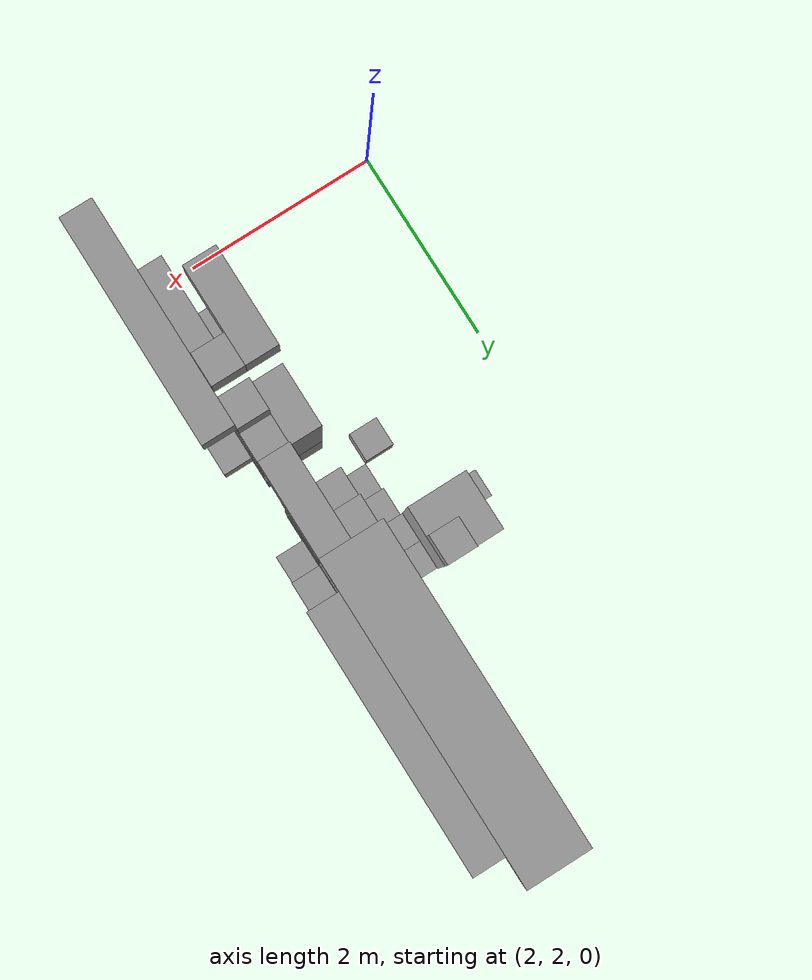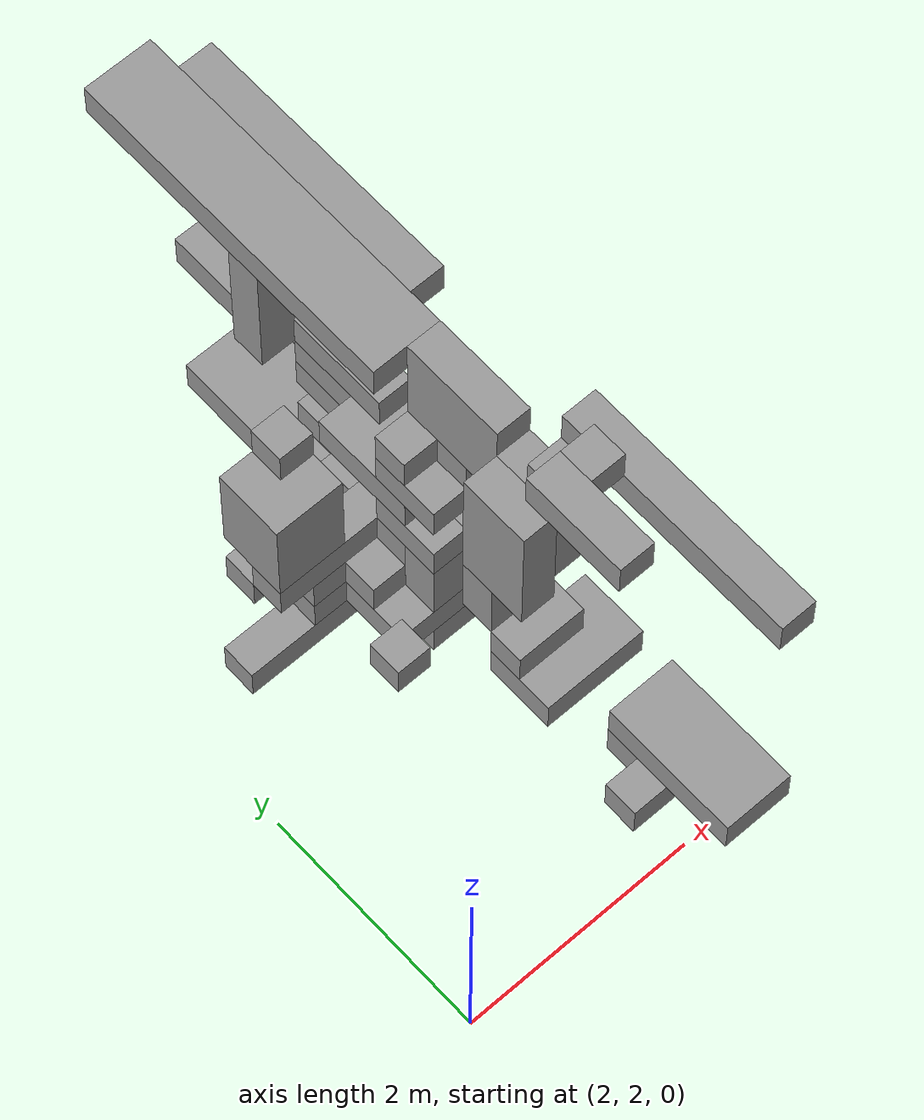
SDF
<sdf version="1.6">
 <world name="bt_world">
  <include><uri>model://sun</uri></include>
  <model name="obstacle_2299">
   <static>true</static>
   <pose>3.5999999999999996 5.25 -0.44999999999999996 0 0 0</pose>
   <link name="link">
    <collision name="collision">
     <geometry><box><size>1.7999999999999998 0.3 0.3</size></box></geometry>
    </collision>
    <visual name="visual">
     <geometry><box><size>1.7999999999999998 0.3 0.3</size></box></geometry>
     <material><ambient>0.5 0.5 0.5 1</ambient><diffuse>0.6 0.6 0.6 1</diffuse></material>
    </visual>
   </link>
  </model>
  <model name="obstacle_2340">
   <static>true</static>
   <pose>3.9 5.25 0.44999999999999996 0 0 0</pose>
   <link name="link">
    <collision name="collision">
     <geometry><box><size>1.7999999999999998 0.3 0.3</size></box></geometry>
    </collision>
    <visual name="visual">
     <geometry><box><size>1.7999999999999998 0.3 0.3</size></box></geometry>
     <material><ambient>0.5 0.5 0.5 1</ambient><diffuse>0.6 0.6 0.6 1</diffuse></material>
    </visual>
   </link>
  </model>
  <model name="obstacle_2341">
   <static>true</static>
   <pose>3.3 5.3999999999999995 1.05 0 0 0</pose>
   <link name="link">
    <collision name="collision">
     <geometry><box><size>0.6 0.6 0.8999999999999999</size></box></geometry>
    </collision>
    <visual name="visual">
     <geometry><box><size>0.6 0.6 0.8999999999999999</size></box></geometry>
     <material><ambient>0.5 0.5 0.5 1</ambient><diffuse>0.6 0.6 0.6 1</diffuse></material>
    </visual>
   </link>
  </model>
  <model name="obstacle_2343">
   <static>true</static>
   <pose>3.9 5.55 0.15 0 0 0</pose>
   <link name="link">
    <collision name="collision">
     <geometry><box><size>1.7999999999999998 0.3 0.3</size></box></geometry>
    </collision>
    <visual name="visual">
     <geometry><box><size>1.7999999999999998 0.3 0.3</size></box></geometry>
     <material><ambient>0.5 0.5 0.5 1</ambient><diffuse>0.6 0.6 0.6 1</diffuse></material>
    </visual>
   </link>
  </model>
  <model name="obstacle_2363">
   <static>true</static>
   <pose>3.4499999999999997 4.35 0.15 0 0 0</pose>
   <link name="link">
    <collision name="collision"><geometry><box><size>0.3 0.3 0.3</size></box></geometry></collision>
    <visual name="visual">
     <geometry><box><size>0.3 0.3 0.3</size></box></geometry>
     <material><ambient>0.5 0.5 0.5 1</ambient><diffuse>0.6 0.6 0.6 1</diffuse></material>
    </visual>
   </link>
  </model>
  <model name="obstacle_2364">
   <static>true</static>
   <pose>4.05 5.25 -0.15 0 0 0</pose>
   <link name="link">
    <collision name="collision"><geometry><box><size>1.5 0.3 0.3</size></box></geometry></collision>
    <visual name="visual">
     <geometry><box><size>1.5 0.3 0.3</size></box></geometry>
     <material><ambient>0.5 0.5 0.5 1</ambient><diffuse>0.6 0.6 0.6 1</diffuse></material>
    </visual>
   </link>
  </model>
  <model name="obstacle_2365">
   <static>true</static>
   <pose>3.75 5.25 0.15 0 0 0</pose>
   <link name="link">
    <collision name="collision">
     <geometry><box><size>0.8999999999999999 0.3 0.3</size></box></geometry>
    </collision>
    <visual name="visual">
     <geometry><box><size>0.8999999999999999 0.3 0.3</size></box></geometry>
     <material><ambient>0.5 0.5 0.5 1</ambient><diffuse>0.6 0.6 0.6 1</diffuse></material>
    </visual>
   </link>
  </model>
  <model name="obstacle_2366">
   <static>true</static>
   <pose>3.4499999999999997 5.55 -0.44999999999999996 0 0 0</pose>
   <link name="link">
    <collision name="collision"><geometry><box><size>0.3 0.3 0.3</size></box></geometry></collision>
    <visual name="visual">
     <geometry><box><size>0.3 0.3 0.3</size></box></geometry>
     <material><ambient>0.5 0.5 0.5 1</ambient><diffuse>0.6 0.6 0.6 1</diffuse></material>
    </visual>
   </link>
  </model>
  <model name="obstacle_2367">
   <static>true</static>
   <pose>3.4499999999999997 5.55 1.65 0 0 0</pose>
   <link name="link">
    <collision name="collision"><geometry><box><size>0.3 0.3 0.3</size></box></geometry></collision>
    <visual name="visual">
     <geometry><box><size>0.3 0.3 0.3</size></box></geometry>
     <material><ambient>0.5 0.5 0.5 1</ambient><diffuse>0.6 0.6 0.6 1</diffuse></material>
    </visual>
   </link>
  </model>
  <model name="obstacle_2383">
   <static>true</static>
   <pose>4.05 4.8 -0.15 0 0 0</pose>
   <link name="link">
    <collision name="collision">
     <geometry><box><size>0.8999999999999999 0.6 0.3</size></box></geometry>
    </collision>
    <visual name="visual">
     <geometry><box><size>0.8999999999999999 0.6 0.3</size></box></geometry>
     <material><ambient>0.5 0.5 0.5 1</ambient><diffuse>0.6 0.6 0.6 1</diffuse></material>
    </visual>
   </link>
  </model>
  <model name="obstacle_2384">
   <static>true</static>
   <pose>3.75 4.95 0.15 0 0 0</pose>
   <link name="link">
    <collision name="collision"><geometry><box><size>0.3 0.3 0.3</size></box></geometry></collision>
    <visual name="visual">
     <geometry><box><size>0.3 0.3 0.3</size></box></geometry>
     <material><ambient>0.5 0.5 0.5 1</ambient><diffuse>0.6 0.6 0.6 1</diffuse></material>
    </visual>
   </link>
  </model>
  <model name="obstacle_2413">
   <static>true</static>
   <pose>4.35 2.55 -0.15 0 0 0</pose>
   <link name="link">
    <collision name="collision">
     <geometry><box><size>0.8999999999999999 0.3 0.3</size></box></geometry>
    </collision>
    <visual name="visual">
     <geometry><box><size>0.8999999999999999 0.3 0.3</size></box></geometry>
     <material><ambient>0.5 0.5 0.5 1</ambient><diffuse>0.6 0.6 0.6 1</diffuse></material>
    </visual>
   </link>
  </model>
  <model name="obstacle_2414">
   <static>true</static>
   <pose>4.05 3.15 3.15 0 0 0</pose>
   <link name="link">
    <collision name="collision">
     <geometry><box><size>0.3 0.8999999999999999 0.3</size></box></geometry>
    </collision>
    <visual name="visual">
     <geometry><box><size>0.3 0.8999999999999999 0.3</size></box></geometry>
     <material><ambient>0.5 0.5 0.5 1</ambient><diffuse>0.6 0.6 0.6 1</diffuse></material>
    </visual>
   </link>
  </model>
  <model name="obstacle_2415">
   <static>true</static>
   <pose>4.35 3.5999999999999996 0.15 0 0 0</pose>
   <link name="link">
    <collision name="collision">
     <geometry><box><size>0.8999999999999999 0.6 0.3</size></box></geometry>
    </collision>
    <visual name="visual">
     <geometry><box><size>0.8999999999999999 0.6 0.3</size></box></geometry>
     <material><ambient>0.5 0.5 0.5 1</ambient><diffuse>0.6 0.6 0.6 1</diffuse></material>
    </visual>
   </link>
  </model>
  <model name="obstacle_2416">
   <static>true</static>
   <pose>4.2 3.75 0.44999999999999996 0 0 0</pose>
   <link name="link">
    <collision name="collision"><geometry><box><size>0.6 0.3 0.3</size></box></geometry></collision>
    <visual name="visual">
     <geometry><box><size>0.6 0.3 0.3</size></box></geometry>
     <material><ambient>0.5 0.5 0.5 1</ambient><diffuse>0.6 0.6 0.6 1</diffuse></material>
    </visual>
   </link>
  </model>
  <model name="obstacle_2417">
   <static>true</static>
   <pose>4.05 3.9 1.7999999999999998 0 0 0</pose>
   <link name="link">
    <collision name="collision"><geometry><box><size>0.3 0.6 1.2</size></box></geometry></collision>
    <visual name="visual">
     <geometry><box><size>0.3 0.6 1.2</size></box></geometry>
     <material><ambient>0.5 0.5 0.5 1</ambient><diffuse>0.6 0.6 0.6 1</diffuse></material>
    </visual>
   </link>
  </model>
  <model name="obstacle_2418">
   <static>true</static>
   <pose>4.05 4.05 0.8999999999999999 0 0 0</pose>
   <link name="link">
    <collision name="collision"><geometry><box><size>0.3 0.3 0.6</size></box></geometry></collision>
    <visual name="visual">
     <geometry><box><size>0.3 0.3 0.6</size></box></geometry>
     <material><ambient>0.5 0.5 0.5 1</ambient><diffuse>0.6 0.6 0.6 1</diffuse></material>
    </visual>
   </link>
  </model>
  <model name="obstacle_2419">
   <static>true</static>
   <pose>4.2 4.8 -0.44999999999999996 0 0 0</pose>
   <link name="link">
    <collision name="collision"><geometry><box><size>0.6 0.6 0.3</size></box></geometry></collision>
    <visual name="visual">
     <geometry><box><size>0.6 0.6 0.3</size></box></geometry>
     <material><ambient>0.5 0.5 0.5 1</ambient><diffuse>0.6 0.6 0.6 1</diffuse></material>
    </visual>
   </link>
  </model>
  <model name="obstacle_2420">
   <static>true</static>
   <pose>4.2 4.6499999999999995 0.3 0 0 0</pose>
   <link name="link">
    <collision name="collision"><geometry><box><size>0.6 0.3 0.6</size></box></geometry></collision>
    <visual name="visual">
     <geometry><box><size>0.6 0.3 0.6</size></box></geometry>
     <material><ambient>0.5 0.5 0.5 1</ambient><diffuse>0.6 0.6 0.6 1</diffuse></material>
    </visual>
   </link>
  </model>
  <model name="obstacle_2421">
   <static>true</static>
   <pose>4.05 4.8 0.75 0 0 0</pose>
   <link name="link">
    <collision name="collision"><geometry><box><size>0.3 0.6 0.3</size></box></geometry></collision>
    <visual name="visual">
     <geometry><box><size>0.3 0.6 0.3</size></box></geometry>
     <material><ambient>0.5 0.5 0.5 1</ambient><diffuse>0.6 0.6 0.6 1</diffuse></material>
    </visual>
   </link>
  </model>
  <model name="obstacle_2422">
   <static>true</static>
   <pose>4.05 4.8 1.3499999999999999 0 0 0</pose>
   <link name="link">
    <collision name="collision"><geometry><box><size>0.3 0.6 0.3</size></box></geometry></collision>
    <visual name="visual">
     <geometry><box><size>0.3 0.6 0.3</size></box></geometry>
     <material><ambient>0.5 0.5 0.5 1</ambient><diffuse>0.6 0.6 0.6 1</diffuse></material>
    </visual>
   </link>
  </model>
  <model name="obstacle_2423">
   <static>true</static>
   <pose>4.05 4.95 0.44999999999999996 0 0 0</pose>
   <link name="link">
    <collision name="collision"><geometry><box><size>0.3 0.3 0.3</size></box></geometry></collision>
    <visual name="visual">
     <geometry><box><size>0.3 0.3 0.3</size></box></geometry>
     <material><ambient>0.5 0.5 0.5 1</ambient><diffuse>0.6 0.6 0.6 1</diffuse></material>
    </visual>
   </link>
  </model>
  <model name="obstacle_2424">
   <static>true</static>
   <pose>4.2 5.25 1.05 0 0 0</pose>
   <link name="link">
    <collision name="collision">
     <geometry><box><size>0.6 0.8999999999999999 0.3</size></box></geometry>
    </collision>
    <visual name="visual">
     <geometry><box><size>0.6 0.8999999999999999 0.3</size></box></geometry>
     <material><ambient>0.5 0.5 0.5 1</ambient><diffuse>0.6 0.6 0.6 1</diffuse></material>
    </visual>
   </link>
  </model>
  <model name="obstacle_2425">
   <static>true</static>
   <pose>4.05 4.95 1.65 0 0 0</pose>
   <link name="link">
    <collision name="collision"><geometry><box><size>0.3 0.3 0.3</size></box></geometry></collision>
    <visual name="visual">
     <geometry><box><size>0.3 0.3 0.3</size></box></geometry>
     <material><ambient>0.5 0.5 0.5 1</ambient><diffuse>0.6 0.6 0.6 1</diffuse></material>
    </visual>
   </link>
  </model>
  <model name="obstacle_2426">
   <static>true</static>
   <pose>4.2 6.6 2.55 0 0 0</pose>
   <link name="link">
    <collision name="collision"><geometry><box><size>0.6 3.0 0.3</size></box></geometry></collision>
    <visual name="visual">
     <geometry><box><size>0.6 3.0 0.3</size></box></geometry>
     <material><ambient>0.5 0.5 0.5 1</ambient><diffuse>0.6 0.6 0.6 1</diffuse></material>
    </visual>
   </link>
  </model>
  <model name="obstacle_2427">
   <static>true</static>
   <pose>4.35 5.55 0.44999999999999996 0 0 0</pose>
   <link name="link">
    <collision name="collision">
     <geometry><box><size>0.8999999999999999 0.3 0.3</size></box></geometry>
    </collision>
    <visual name="visual">
     <geometry><box><size>0.8999999999999999 0.3 0.3</size></box></geometry>
     <material><ambient>0.5 0.5 0.5 1</ambient><diffuse>0.6 0.6 0.6 1</diffuse></material>
    </visual>
   </link>
  </model>
  <model name="obstacle_2428">
   <static>true</static>
   <pose>4.35 6.45 -0.15 0 0 0</pose>
   <link name="link">
    <collision name="collision">
     <geometry><box><size>0.8999999999999999 1.5 0.3</size></box></geometry>
    </collision>
    <visual name="visual">
     <geometry><box><size>0.8999999999999999 1.5 0.3</size></box></geometry>
     <material><ambient>0.5 0.5 0.5 1</ambient><diffuse>0.6 0.6 0.6 1</diffuse></material>
    </visual>
   </link>
  </model>
  <model name="obstacle_2430">
   <static>true</static>
   <pose>4.2 6.45 1.7999999999999998 0 0 0</pose>
   <link name="link">
    <collision name="collision"><geometry><box><size>0.6 0.3 1.2</size></box></geometry></collision>
    <visual name="visual">
     <geometry><box><size>0.6 0.3 1.2</size></box></geometry>
     <material><ambient>0.5 0.5 0.5 1</ambient><diffuse>0.6 0.6 0.6 1</diffuse></material>
    </visual>
   </link>
  </model>
  <model name="obstacle_2431">
   <static>true</static>
   <pose>4.2 6.8999999999999995 1.65 0 0 0</pose>
   <link name="link">
    <collision name="collision"><geometry><box><size>0.6 0.6 0.3</size></box></geometry></collision>
    <visual name="visual">
     <geometry><box><size>0.6 0.6 0.3</size></box></geometry>
     <material><ambient>0.5 0.5 0.5 1</ambient><diffuse>0.6 0.6 0.6 1</diffuse></material>
    </visual>
   </link>
  </model>
  <model name="obstacle_2502">
   <static>true</static>
   <pose>4.5 2.4 0.15 0 0 0</pose>
   <link name="link">
    <collision name="collision"><geometry><box><size>0.6 1.2 0.3</size></box></geometry></collision>
    <visual name="visual">
     <geometry><box><size>0.6 1.2 0.3</size></box></geometry>
     <material><ambient>0.5 0.5 0.5 1</ambient><diffuse>0.6 0.6 0.6 1</diffuse></material>
    </visual>
   </link>
  </model>
  <model name="obstacle_2503">
   <static>true</static>
   <pose>4.35 2.85 -0.15 0 0 0</pose>
   <link name="link">
    <collision name="collision"><geometry><box><size>0.3 0.3 0.3</size></box></geometry></collision>
    <visual name="visual">
     <geometry><box><size>0.3 0.3 0.3</size></box></geometry>
     <material><ambient>0.5 0.5 0.5 1</ambient><diffuse>0.6 0.6 0.6 1</diffuse></material>
    </visual>
   </link>
  </model>
  <model name="obstacle_2504">
   <static>true</static>
   <pose>4.35 3.4499999999999997 3.15 0 0 0</pose>
   <link name="link">
    <collision name="collision"><geometry><box><size>0.3 0.3 0.3</size></box></geometry></collision>
    <visual name="visual">
     <geometry><box><size>0.3 0.3 0.3</size></box></geometry>
     <material><ambient>0.5 0.5 0.5 1</ambient><diffuse>0.6 0.6 0.6 1</diffuse></material>
    </visual>
   </link>
  </model>
  <model name="obstacle_2505">
   <static>true</static>
   <pose>4.35 3.9 1.95 0 0 0</pose>
   <link name="link">
    <collision name="collision">
     <geometry><box><size>0.3 0.6 0.8999999999999999</size></box></geometry>
    </collision>
    <visual name="visual">
     <geometry><box><size>0.3 0.6 0.8999999999999999</size></box></geometry>
     <material><ambient>0.5 0.5 0.5 1</ambient><diffuse>0.6 0.6 0.6 1</diffuse></material>
    </visual>
   </link>
  </model>
  <model name="obstacle_2506">
   <static>true</static>
   <pose>4.35 3.75 2.55 0 0 0</pose>
   <link name="link">
    <collision name="collision"><geometry><box><size>0.3 0.3 0.3</size></box></geometry></collision>
    <visual name="visual">
     <geometry><box><size>0.3 0.3 0.3</size></box></geometry>
     <material><ambient>0.5 0.5 0.5 1</ambient><diffuse>0.6 0.6 0.6 1</diffuse></material>
    </visual>
   </link>
  </model>
  <model name="obstacle_2507">
   <static>true</static>
   <pose>4.35 4.05 0.3 0 0 0</pose>
   <link name="link">
    <collision name="collision"><geometry><box><size>0.3 0.3 0.6</size></box></geometry></collision>
    <visual name="visual">
     <geometry><box><size>0.3 0.3 0.6</size></box></geometry>
     <material><ambient>0.5 0.5 0.5 1</ambient><diffuse>0.6 0.6 0.6 1</diffuse></material>
    </visual>
   </link>
  </model>
  <model name="obstacle_2508">
   <static>true</static>
   <pose>4.35 4.05 1.3499999999999999 0 0 0</pose>
   <link name="link">
    <collision name="collision"><geometry><box><size>0.3 0.3 0.3</size></box></geometry></collision>
    <visual name="visual">
     <geometry><box><size>0.3 0.3 0.3</size></box></geometry>
     <material><ambient>0.5 0.5 0.5 1</ambient><diffuse>0.6 0.6 0.6 1</diffuse></material>
    </visual>
   </link>
  </model>
  <model name="obstacle_2509">
   <static>true</static>
   <pose>4.35 4.6499999999999995 2.25 0 0 0</pose>
   <link name="link">
    <collision name="collision">
     <geometry><box><size>0.3 0.8999999999999999 0.8999999999999999</size></box></geometry>
    </collision>
    <visual name="visual">
     <geometry><box><size>0.3 0.8999999999999999 0.8999999999999999</size></box></geometry>
     <material><ambient>0.5 0.5 0.5 1</ambient><diffuse>0.6 0.6 0.6 1</diffuse></material>
    </visual>
   </link>
  </model>
  <model name="obstacle_2510">
   <static>true</static>
   <pose>4.35 4.6499999999999995 1.65 0 0 0</pose>
   <link name="link">
    <collision name="collision"><geometry><box><size>0.3 0.3 0.3</size></box></geometry></collision>
    <visual name="visual">
     <geometry><box><size>0.3 0.3 0.3</size></box></geometry>
     <material><ambient>0.5 0.5 0.5 1</ambient><diffuse>0.6 0.6 0.6 1</diffuse></material>
    </visual>
   </link>
  </model>
  <model name="obstacle_2511">
   <static>true</static>
   <pose>4.35 4.95 0.15 0 0 0</pose>
   <link name="link">
    <collision name="collision"><geometry><box><size>0.3 0.3 0.3</size></box></geometry></collision>
    <visual name="visual">
     <geometry><box><size>0.3 0.3 0.3</size></box></geometry>
     <material><ambient>0.5 0.5 0.5 1</ambient><diffuse>0.6 0.6 0.6 1</diffuse></material>
    </visual>
   </link>
  </model>
  <model name="obstacle_2512">
   <static>true</static>
   <pose>4.35 5.55 0.75 0 0 0</pose>
   <link name="link">
    <collision name="collision"><geometry><box><size>0.3 1.5 0.3</size></box></geometry></collision>
    <visual name="visual">
     <geometry><box><size>0.3 1.5 0.3</size></box></geometry>
     <material><ambient>0.5 0.5 0.5 1</ambient><diffuse>0.6 0.6 0.6 1</diffuse></material>
    </visual>
   </link>
  </model>
  <model name="obstacle_2513">
   <static>true</static>
   <pose>4.35 4.95 1.3499999999999999 0 0 0</pose>
   <link name="link">
    <collision name="collision"><geometry><box><size>0.3 0.3 0.3</size></box></geometry></collision>
    <visual name="visual">
     <geometry><box><size>0.3 0.3 0.3</size></box></geometry>
     <material><ambient>0.5 0.5 0.5 1</ambient><diffuse>0.6 0.6 0.6 1</diffuse></material>
    </visual>
   </link>
  </model>
  <model name="obstacle_2514">
   <static>true</static>
   <pose>4.35 5.85 1.3499999999999999 0 0 0</pose>
   <link name="link">
    <collision name="collision">
     <geometry><box><size>0.3 0.8999999999999999 0.3</size></box></geometry>
    </collision>
    <visual name="visual">
     <geometry><box><size>0.3 0.8999999999999999 0.3</size></box></geometry>
     <material><ambient>0.5 0.5 0.5 1</ambient><diffuse>0.6 0.6 0.6 1</diffuse></material>
    </visual>
   </link>
  </model>
  <model name="obstacle_2515">
   <static>true</static>
   <pose>4.35 5.85 2.1 0 0 0</pose>
   <link name="link">
    <collision name="collision">
     <geometry><box><size>0.3 0.8999999999999999 0.6</size></box></geometry>
    </collision>
    <visual name="visual">
     <geometry><box><size>0.3 0.8999999999999999 0.6</size></box></geometry>
     <material><ambient>0.5 0.5 0.5 1</ambient><diffuse>0.6 0.6 0.6 1</diffuse></material>
    </visual>
   </link>
  </model>
  <model name="obstacle_2516">
   <static>true</static>
   <pose>4.5 6.0 0.15 0 0 0</pose>
   <link name="link">
    <collision name="collision"><geometry><box><size>0.6 0.6 0.3</size></box></geometry></collision>
    <visual name="visual">
     <geometry><box><size>0.6 0.6 0.3</size></box></geometry>
     <material><ambient>0.5 0.5 0.5 1</ambient><diffuse>0.6 0.6 0.6 1</diffuse></material>
    </visual>
   </link>
  </model>
  <model name="obstacle_2517">
   <static>true</static>
   <pose>4.35 6.0 1.05 0 0 0</pose>
   <link name="link">
    <collision name="collision"><geometry><box><size>0.3 0.6 0.3</size></box></geometry></collision>
    <visual name="visual">
     <geometry><box><size>0.3 0.6 0.3</size></box></geometry>
     <material><ambient>0.5 0.5 0.5 1</ambient><diffuse>0.6 0.6 0.6 1</diffuse></material>
    </visual>
   </link>
  </model>
  <model name="obstacle_2519">
   <static>true</static>
   <pose>4.35 6.75 1.05 0 0 0</pose>
   <link name="link">
    <collision name="collision">
     <geometry><box><size>0.3 0.3 0.8999999999999999</size></box></geometry>
    </collision>
    <visual name="visual">
     <geometry><box><size>0.3 0.3 0.8999999999999999</size></box></geometry>
     <material><ambient>0.5 0.5 0.5 1</ambient><diffuse>0.6 0.6 0.6 1</diffuse></material>
    </visual>
   </link>
  </model>
  <model name="obstacle_2521">
   <static>true</static>
   <pose>4.35 6.75 2.25 0 0 0</pose>
   <link name="link">
    <collision name="collision"><geometry><box><size>0.3 0.3 0.3</size></box></geometry></collision>
    <visual name="visual">
     <geometry><box><size>0.3 0.3 0.3</size></box></geometry>
     <material><ambient>0.5 0.5 0.5 1</ambient><diffuse>0.6 0.6 0.6 1</diffuse></material>
    </visual>
   </link>
  </model>
  <model name="obstacle_2583">
   <static>true</static>
   <pose>4.6499999999999995 2.85 2.85 0 0 0</pose>
   <link name="link">
    <collision name="collision"><geometry><box><size>0.3 2.1 0.3</size></box></geometry></collision>
    <visual name="visual">
     <geometry><box><size>0.3 2.1 0.3</size></box></geometry>
     <material><ambient>0.5 0.5 0.5 1</ambient><diffuse>0.6 0.6 0.6 1</diffuse></material>
    </visual>
   </link>
  </model>
  <model name="obstacle_2584">
   <static>true</static>
   <pose>4.6499999999999995 4.95 -0.15 0 0 0</pose>
   <link name="link">
    <collision name="collision"><geometry><box><size>0.3 0.3 0.3</size></box></geometry></collision>
    <visual name="visual">
     <geometry><box><size>0.3 0.3 0.3</size></box></geometry>
     <material><ambient>0.5 0.5 0.5 1</ambient><diffuse>0.6 0.6 0.6 1</diffuse></material>
    </visual>
   </link>
  </model>
  <model name="obstacle_2585">
   <static>true</static>
   <pose>4.6499999999999995 6.6 2.55 0 0 0</pose>
   <link name="link">
    <collision name="collision"><geometry><box><size>0.3 2.4 0.3</size></box></geometry></collision>
    <visual name="visual">
     <geometry><box><size>0.3 2.4 0.3</size></box></geometry>
     <material><ambient>0.5 0.5 0.5 1</ambient><diffuse>0.6 0.6 0.6 1</diffuse></material>
    </visual>
   </link>
  </model>
  <model name="obstacle_2586">
   <static>true</static>
   <pose>4.6499999999999995 6.3 0.44999999999999996 0 0 0</pose>
   <link name="link">
    <collision name="collision"><geometry><box><size>0.3 1.2 0.3</size></box></geometry></collision>
    <visual name="visual">
     <geometry><box><size>0.3 1.2 0.3</size></box></geometry>
     <material><ambient>0.5 0.5 0.5 1</ambient><diffuse>0.6 0.6 0.6 1</diffuse></material>
    </visual>
   </link>
  </model>
  <model name="obstacle_2587">
   <static>true</static>
   <pose>4.6499999999999995 6.45 0.15 0 0 0</pose>
   <link name="link">
    <collision name="collision"><geometry><box><size>0.3 0.3 0.3</size></box></geometry></collision>
    <visual name="visual">
     <geometry><box><size>0.3 0.3 0.3</size></box></geometry>
     <material><ambient>0.5 0.5 0.5 1</ambient><diffuse>0.6 0.6 0.6 1</diffuse></material>
    </visual>
   </link>
  </model>
 </world>
</sdf>
